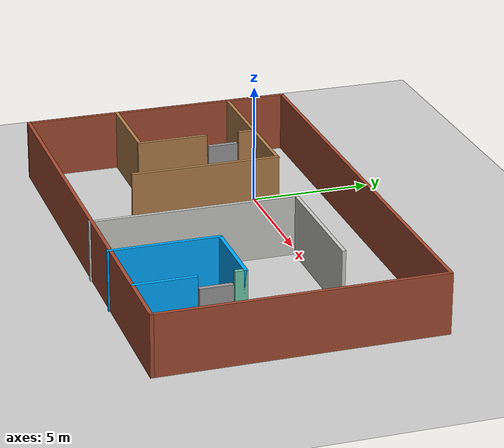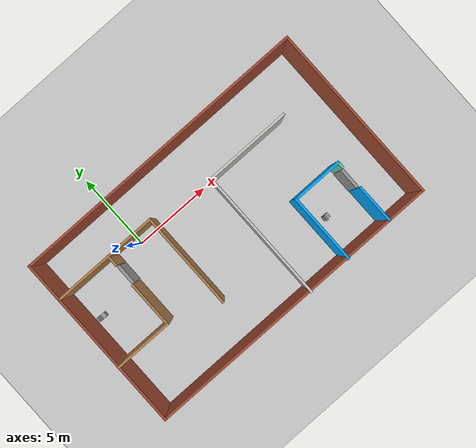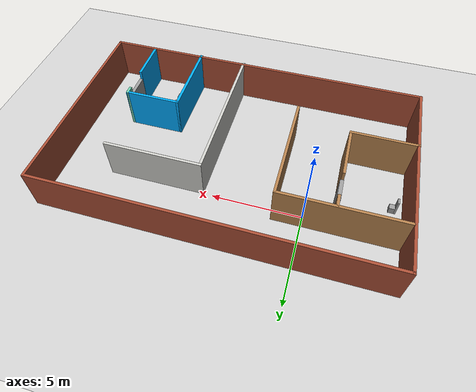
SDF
<sdf version="1.6">
 <world name="default">
  <plugin name="hello" filename="libhello.so"/>
  <light name="sun" type="directional">
   <pose>0 0 10 0 -0 0</pose>
   <diffuse>0.8 0.8 0.8 1</diffuse>
   <specular>0.1 0.1 0.1 1</specular>
   <attenuation>
    <range>1000</range>
    <constant>0.9</constant>
    <linear>0.01</linear>
    <quadratic>0.001</quadratic>
   </attenuation>
   <direction>-0.5 0.5 -1</direction>
  </light>
  <model name="ground_plane">
   <static>1</static>
   <link name="link">
    <collision name="collision">
     <geometry><plane><normal>0 0 1</normal><size>100 100</size></plane></geometry>
     <surface><friction><ode><mu>100</mu><mu2>50</mu2></ode></friction></surface>
    </collision>
    <visual name="visual">
     <cast_shadows>0</cast_shadows>
     <geometry><plane><normal>0 0 1</normal><size>100 100</size></plane></geometry>
     <material>
      <script><uri>file://media/materials/scripts/gazebo.material</uri><name>Gazebo/Grey</name></script>
     </material>
    </visual>
   </link>
  </model>
  <gravity>0 0 -9.8</gravity>
  <magnetic_field>6e-06 2.3e-05 -4.2e-05</magnetic_field>
  <atmosphere type="adiabatic"/>
  <physics name="default_physics" default="0" type="ode">
   <max_step_size>0.001</max_step_size>
   <real_time_factor>1</real_time_factor>
   <real_time_update_rate>1000</real_time_update_rate>
  </physics>
  <scene><ambient>0.4 0.4 0.4 1</ambient><background>0.7 0.7 0.7 1</background><shadows>1</shadows></scene>
  <spherical_coordinates>
   <surface_model>EARTH_WGS84</surface_model>
   <latitude_deg>0</latitude_deg>
   <longitude_deg>0</longitude_deg>
   <elevation>0</elevation>
   <heading_deg>0</heading_deg>
  </spherical_coordinates>
  <model name="myhome">
   <pose>4.38638 -2.72741 0 0 -0 0</pose>
   <link name="Door_0">
    <collision name="Door_0_Collision">
     <geometry><box><size>1.27817 0.2 2</size></box></geometry>
     <pose>0 0 1 0 -0 0</pose>
    </collision>
    <visual name="Door_0_Visual">
     <pose>0 0 1 0 -0 0</pose>
     <geometry><box><size>1.27817 0.2 2</size></box></geometry>
     <material>
      <script><uri>file://media/materials/scripts/gazebo.material</uri><name>Gazebo/Grey</name></script>
     </material>
    </visual>
    <pose>-5.94324 1.84811 0 0 0 -1.57152</pose>
   </link>
   <link name="Door_1">
    <collision name="Door_1_Collision">
     <geometry><box><size>1.3153 0.2 2</size></box></geometry>
     <pose>0 0 1 0 -0 0</pose>
    </collision>
    <visual name="Door_1_Visual">
     <pose>0 0 1 0 -0 0</pose>
     <geometry><box><size>1.3153 0.2 2</size></box></geometry>
     <material>
      <script><uri>file://media/materials/scripts/gazebo.material</uri><name>Gazebo/Grey</name></script>
     </material>
    </visual>
    <pose>7.08122 -2.48842 0 0 0 -1.57552</pose>
   </link>
   <link name="Wall_10">
    <collision name="Wall_10_Collision">
     <geometry><box><size>6.75 0.15 2.5</size></box></geometry>
     <pose>0 0 1.25 0 -0 0</pose>
    </collision>
    <visual name="Wall_10_Visual">
     <pose>0 0 1.25 0 -0 0</pose>
     <geometry><box><size>6.75 0.15 2.5</size></box></geometry>
     <material>
      <script><uri>file://media/materials/scripts/gazebo.material</uri><name>Gazebo/Wood</name></script>
      <ambient>0.996078 0.47451 0.0196078 1</ambient>
     </material>
    </visual>
    <pose>-6.1354 3.21487 0 0 -0 0</pose>
   </link>
   <link name="Wall_11">
    <collision name="Wall_11_Collision">
     <geometry><box><size>6.25 0.15 2.5</size></box></geometry>
     <pose>0 0 1.25 0 -0 0</pose>
    </collision>
    <visual name="Wall_11_Visual">
     <pose>0 0 1.25 0 -0 0</pose>
     <geometry><box><size>6.25 0.15 2.5</size></box></geometry>
     <material>
      <script><uri>file://media/materials/scripts/gazebo.material</uri><name>Gazebo/Wood</name></script>
      <ambient>0.996078 0.47451 0.0196078 1</ambient>
     </material>
    </visual>
    <pose>-2.8354 0.164866 0 0 0 -1.5708</pose>
   </link>
   <link name="Wall_13">
    <collision name="Wall_13_Collision">
     <geometry><box><size>8.5 0.15 2.5</size></box></geometry>
     <pose>0 0 1.25 0 -0 0</pose>
    </collision>
    <visual name="Wall_13_Visual">
     <pose>0 0 1.25 0 -0 0</pose>
     <geometry><box><size>8.5 0.15 2.5</size></box></geometry>
     <material>
      <script><uri>file://media/materials/scripts/gazebo.material</uri><name>Gazebo/CeilingTiled</name></script>
      <ambient>0.435294 0.796078 0.67451 1</ambient>
     </material>
    </visual>
    <pose>1.2112 -1.5324 0 0 -0 1.5708</pose>
   </link>
   <link name="Wall_14">
    <collision name="Wall_14_Collision">
     <geometry><box><size>5.5 0.15 2.5</size></box></geometry>
     <pose>0 0 1.25 0 -0 0</pose>
    </collision>
    <visual name="Wall_14_Visual">
     <pose>0 0 1.25 0 -0 0</pose>
     <geometry><box><size>5.5 0.15 2.5</size></box></geometry>
     <material>
      <script><uri>file://media/materials/scripts/gazebo.material</uri><name>Gazebo/CeilingTiled</name></script>
      <ambient>0.435294 0.796078 0.67451 1</ambient>
     </material>
    </visual>
    <pose>3.8862 2.6426 0 0 -0 0</pose>
   </link>
   <link name="Wall_16">
    <collision name="Wall_16_Collision">
     <geometry><box><size>4.5 0.15 2.5</size></box></geometry>
     <pose>0 0 1.25 0 -0 0</pose>
    </collision>
    <visual name="Wall_16_Visual">
     <pose>0 0 1.25 0 -0 0</pose>
     <geometry><box><size>4.5 0.15 2.5</size></box></geometry>
     <material>
      <script><uri>file://media/materials/scripts/gazebo.material</uri><name>Gazebo/Grey</name></script>
      <ambient>0 0.666667 1 1</ambient>
     </material>
    </visual>
    <pose>3.97995 -3.5324 0 0 -0 1.5708</pose>
   </link>
   <link name="Wall_17">
    <collision name="Wall_17_Collision">
     <geometry><box><size>3.25 0.15 2.5</size></box></geometry>
     <pose>0 0 1.25 0 -0 0</pose>
    </collision>
    <visual name="Wall_17_Visual">
     <pose>0 0 1.25 0 -0 0</pose>
     <geometry><box><size>3.25 0.15 2.5</size></box></geometry>
     <material>
      <script><uri>file://media/materials/scripts/gazebo.material</uri><name>Gazebo/Grey</name></script>
      <ambient>0 0.666667 1 1</ambient>
     </material>
    </visual>
    <pose>5.52996 -1.3574 0 0 -0 0</pose>
   </link>
   <link name="Wall_19">
    <collision name="Wall_19_Collision">
     <geometry><box><size>3.75 0.15 2.5</size></box></geometry>
     <pose>0 0 1.25 0 -0 0</pose>
    </collision>
    <visual name="Wall_19_Visual">
     <pose>0 0 1.25 0 -0 0</pose>
     <geometry><box><size>3.75 0.15 2.5</size></box></geometry>
     <material>
      <script><uri>file://media/materials/scripts/gazebo.material</uri><name>Gazebo/Wood</name></script>
      <ambient>1 1 1 1</ambient>
     </material>
    </visual>
    <pose>-7.75618 -1.76961 0 0 -0 0</pose>
   </link>
   <link name="Wall_20">
    <collision name="Wall_20_Collision">
     <geometry><box><size>3 0.15 2.5</size></box></geometry>
     <pose>0 0 1.25 0 -0 0</pose>
    </collision>
    <visual name="Wall_20_Visual">
     <pose>0 0 1.25 0 -0 0</pose>
     <geometry><box><size>3 0.15 2.5</size></box></geometry>
     <material>
      <script><uri>file://media/materials/scripts/gazebo.material</uri><name>Gazebo/Wood</name></script>
      <ambient>1 1 1 1</ambient>
     </material>
    </visual>
    <pose>-5.95618 -0.344612 0 0 -0 1.5708</pose>
   </link>
   <link name="Wall_22">
    <collision name="Wall_22_Collision">
     <geometry><box><size>0.75 0.15 2.5</size></box></geometry>
     <pose>0 0 1.25 0 -0 0</pose>
    </collision>
    <visual name="Wall_22_Visual">
     <pose>0 0 1.25 0 -0 0</pose>
     <geometry><box><size>0.75 0.15 2.5</size></box></geometry>
     <material>
      <script><uri>file://media/materials/scripts/gazebo.material</uri><name>Gazebo/Wood</name></script>
      <ambient>1 1 1 1</ambient>
     </material>
    </visual>
    <pose>-5.90629 2.89225 0 0 0 -1.5708</pose>
   </link>
   <link name="Wall_24">
    <collision name="Wall_24_Collision">
     <geometry><box><size>0.5 0.15 2.5</size></box></geometry>
     <pose>0 0 1.25 0 -0 0</pose>
    </collision>
    <visual name="Wall_24_Visual">
     <pose>0 0 1.25 0 -0 0</pose>
     <geometry><box><size>0.5 0.15 2.5</size></box></geometry>
     <material>
      <script><uri>file://media/materials/scripts/gazebo.material</uri><name>Gazebo/Grey</name></script>
      <ambient>0.435294 0.796078 0.67451 1</ambient>
     </material>
    </visual>
    <pose>7.07996 -1.5324 0 0 0 -1.5708</pose>
   </link>
   <link name="Wall_26">
    <collision name="Wall_26_Collision">
     <geometry><box><size>2.5 0.15 2.5</size></box></geometry>
     <pose>0 0 1.25 0 -0 0</pose>
    </collision>
    <visual name="Wall_26_Visual">
     <pose>0 0 1.25 0 -0 0</pose>
     <geometry><box><size>2.5 0.15 2.5</size></box></geometry>
     <material>
      <script><uri>file://media/materials/scripts/gazebo.material</uri><name>Gazebo/Grey</name></script>
      <ambient>0 0.666667 1 1</ambient>
     </material>
    </visual>
    <pose>7.07861 -4.44031 0 0 0 -1.5708</pose>
   </link>
   <link name="Wall_3">
    <collision name="Wall_3_Collision">
     <geometry><box><size>11.5 0.15 2.5</size></box></geometry>
     <pose>0 0 1.25 0 -0 0</pose>
    </collision>
    <visual name="Wall_3_Visual">
     <pose>0 0 1.25 0 -0 0</pose>
     <geometry><box><size>11.5 0.15 2.5</size></box></geometry>
     <material>
      <script><uri>file://media/materials/scripts/gazebo.material</uri><name>Gazebo/Bricks</name></script>
      <ambient>1 1 1 1</ambient>
     </material>
    </visual>
    <pose>-9.54382 0.032397 0 0 -0 1.5708</pose>
   </link>
   <link name="Wall_6">
    <collision name="Wall_6_Collision">
     <geometry><box><size>19.25 0.15 2.5</size></box></geometry>
     <pose>0 0 1.25 0 -0 0</pose>
    </collision>
    <visual name="Wall_6_Visual">
     <pose>0 0 1.25 0 -0 0</pose>
     <geometry><box><size>19.25 0.15 2.5</size></box></geometry>
     <material>
      <script><uri>file://media/materials/scripts/gazebo.material</uri><name>Gazebo/Bricks</name></script>
      <ambient>1 1 1 1</ambient>
     </material>
    </visual>
    <pose>0.006176 5.7074 0 0 -0 0</pose>
   </link>
   <link name="Wall_7">
    <collision name="Wall_7_Collision">
     <geometry><box><size>11.5 0.15 2.5</size></box></geometry>
     <pose>0 0 1.25 0 -0 0</pose>
    </collision>
    <visual name="Wall_7_Visual">
     <pose>0 0 1.25 0 -0 0</pose>
     <geometry><box><size>11.5 0.15 2.5</size></box></geometry>
     <material>
      <script><uri>file://media/materials/scripts/gazebo.material</uri><name>Gazebo/Bricks</name></script>
      <ambient>1 1 1 1</ambient>
     </material>
    </visual>
    <pose>9.55618 0.032397 0 0 0 -1.5708</pose>
   </link>
   <link name="Wall_8">
    <collision name="Wall_8_Collision">
     <geometry><box><size>19.25 0.15 2.5</size></box></geometry>
     <pose>0 0 1.25 0 -0 0</pose>
    </collision>
    <visual name="Wall_8_Visual">
     <pose>0 0 1.25 0 -0 0</pose>
     <geometry><box><size>19.25 0.15 2.5</size></box></geometry>
     <material>
      <script><uri>file://media/materials/scripts/gazebo.material</uri><name>Gazebo/Bricks</name></script>
      <ambient>1 1 1 1</ambient>
     </material>
    </visual>
    <pose>0.006176 -5.6426 0 0 -0 3.14159</pose>
   </link>
   <static>1</static>
  </model>
  <model name="chair">
   <link name="link_0">
    <pose>0.1 2e-06 -0.15 0 -0 0</pose>
    <inertial>
     <mass>1</mass>
     <inertia>
      <ixx>0.166667</ixx>
      <ixy>0</ixy>
      <ixz>0</ixz>
      <iyy>0.166667</iyy>
      <iyz>0</iyz>
      <izz>0.166667</izz>
     </inertia>
     <pose>0 0 -0.3 0 -0 0</pose>
    </inertial>
    <visual name="visual">
     <geometry><box><size>0.3 0.3 0.4</size></box></geometry>
     <material>
      <lighting>1</lighting>
      <script><uri>file://media/materials/scripts/gazebo.material</uri><name>Gazebo/Grey</name></script>
      <ambient>0.3 0.3 0.3 1</ambient>
      <diffuse>0.7 0.7 0.7 1</diffuse>
      <specular>0.01 0.01 0.01 1</specular>
      <emissive>0 0 0 1</emissive>
      <shader type="vertex"><normal_map>__default__</normal_map></shader>
     </material>
    </visual>
    <collision name="collision">
     <geometry><box><size>0.3 0.3 0.4</size></box></geometry>
     <surface>
      <friction>
       <ode><mu>1</mu><mu2>1</mu2><fdir1>0 0 0</fdir1><slip1>0</slip1><slip2>0</slip2></ode>
       <torsional>
        <coefficient>1</coefficient>
        <patch_radius>0</patch_radius>
        <surface_radius>0</surface_radius>
        <use_patch_radius>1</use_patch_radius>
        <ode><slip>0</slip></ode>
       </torsional>
      </friction>
      <bounce><restitution_coefficient>0</restitution_coefficient><threshold>1e+06</threshold></bounce>
      <contact>
       <collide_without_contact>0</collide_without_contact>
       <collide_without_contact_bitmask>1</collide_without_contact_bitmask>
       <collide_bitmask>1</collide_bitmask>
       <ode>
        <soft_cfm>0</soft_cfm>
        <soft_erp>0.2</soft_erp>
        <kp>1e+13</kp>
        <kd>1</kd>
        <max_vel>0.01</max_vel>
        <min_depth>0</min_depth>
       </ode>
       <bullet>
        <split_impulse>1</split_impulse>
        <split_impulse_penetration_threshold>-0.01</split_impulse_penetration_threshold>
        <soft_cfm>0</soft_cfm>
        <soft_erp>0.2</soft_erp>
        <kp>1e+13</kp>
        <kd>1</kd>
       </bullet>
      </contact>
     </surface>
    </collision>
   </link>
   <link name="link_1">
    <pose>-0.1 2e-06 0.15 0 -0 0</pose>
    <inertial>
     <mass>0.763972</mass>
     <inertia>
      <ixx>0.100822</ixx>
      <ixy>0</ixy>
      <ixz>0</ixz>
      <iyy>0.127329</iyy>
      <iyz>0</iyz>
      <izz>0.100822</izz>
     </inertia>
    </inertial>
    <visual name="visual">
     <geometry><box><size>0.1 0.305589 1</size></box></geometry>
     <material>
      <lighting>1</lighting>
      <script><uri>file://media/materials/scripts/gazebo.material</uri><name>Gazebo/Grey</name></script>
      <ambient>0.3 0.3 0.3 1</ambient>
      <diffuse>0.7 0.7 0.7 1</diffuse>
      <specular>0.01 0.01 0.01 1</specular>
      <emissive>0 0 0 1</emissive>
      <shader type="vertex"><normal_map>__default__</normal_map></shader>
     </material>
    </visual>
    <collision name="collision">
     <geometry><box><size>0.1 0.305589 1</size></box></geometry>
     <surface>
      <friction>
       <ode><mu>1</mu><mu2>1</mu2><fdir1>0 0 0</fdir1><slip1>0</slip1><slip2>0</slip2></ode>
       <torsional>
        <coefficient>1</coefficient>
        <patch_radius>0</patch_radius>
        <surface_radius>0</surface_radius>
        <use_patch_radius>1</use_patch_radius>
        <ode><slip>0</slip></ode>
       </torsional>
      </friction>
      <bounce><restitution_coefficient>0</restitution_coefficient><threshold>1e+06</threshold></bounce>
      <contact>
       <collide_without_contact>0</collide_without_contact>
       <collide_without_contact_bitmask>1</collide_without_contact_bitmask>
       <collide_bitmask>1</collide_bitmask>
       <ode>
        <soft_cfm>0</soft_cfm>
        <soft_erp>0.2</soft_erp>
        <kp>1e+13</kp>
        <kd>1</kd>
        <max_vel>0.01</max_vel>
        <min_depth>0</min_depth>
       </ode>
       <bullet>
        <split_impulse>1</split_impulse>
        <split_impulse_penetration_threshold>-0.01</split_impulse_penetration_threshold>
        <soft_cfm>0</soft_cfm>
        <soft_erp>0.2</soft_erp>
        <kp>1e+13</kp>
        <kd>1</kd>
       </bullet>
      </contact>
     </surface>
    </collision>
   </link>
   <joint name="link_1_JOINT_1" type="fixed">
    <parent>link_1</parent>
    <child>link_0</child>
    <physics>
     <ode><limit><cfm>0</cfm><erp>0.2</erp></limit><suspension><cfm>0</cfm><erp>0.2</erp></suspension></ode>
    </physics>
   </joint>
   <static>0</static>
   <pose>9.25154 -6.12315 0.35 0 -0 8e-06</pose>
  </model>
  <model name="chair_0">
   <link name="link_0">
    <pose>0.1 2e-06 -0.15 0 -0 0</pose>
    <inertial>
     <mass>1</mass>
     <inertia>
      <ixx>0.166667</ixx>
      <ixy>0</ixy>
      <ixz>0</ixz>
      <iyy>0.166667</iyy>
      <iyz>0</iyz>
      <izz>0.166667</izz>
     </inertia>
     <pose>0 0 -0.3 0 -0 0</pose>
    </inertial>
    <visual name="visual">
     <geometry><box><size>0.3 0.3 0.4</size></box></geometry>
     <material>
      <lighting>1</lighting>
      <script><uri>file://media/materials/scripts/gazebo.material</uri><name>Gazebo/Grey</name></script>
      <ambient>0.3 0.3 0.3 1</ambient>
      <diffuse>0.7 0.7 0.7 1</diffuse>
      <specular>0.01 0.01 0.01 1</specular>
      <emissive>0 0 0 1</emissive>
      <shader type="vertex"><normal_map>__default__</normal_map></shader>
     </material>
    </visual>
    <collision name="collision">
     <geometry><box><size>0.3 0.3 0.4</size></box></geometry>
     <surface>
      <friction>
       <ode><mu>1</mu><mu2>1</mu2><fdir1>0 0 0</fdir1><slip1>0</slip1><slip2>0</slip2></ode>
       <torsional>
        <coefficient>1</coefficient>
        <patch_radius>0</patch_radius>
        <surface_radius>0</surface_radius>
        <use_patch_radius>1</use_patch_radius>
        <ode><slip>0</slip></ode>
       </torsional>
      </friction>
      <bounce><restitution_coefficient>0</restitution_coefficient><threshold>1e+06</threshold></bounce>
      <contact>
       <collide_without_contact>0</collide_without_contact>
       <collide_without_contact_bitmask>1</collide_without_contact_bitmask>
       <collide_bitmask>1</collide_bitmask>
       <ode>
        <soft_cfm>0</soft_cfm>
        <soft_erp>0.2</soft_erp>
        <kp>1e+13</kp>
        <kd>1</kd>
        <max_vel>0.01</max_vel>
        <min_depth>0</min_depth>
       </ode>
       <bullet>
        <split_impulse>1</split_impulse>
        <split_impulse_penetration_threshold>-0.01</split_impulse_penetration_threshold>
        <soft_cfm>0</soft_cfm>
        <soft_erp>0.2</soft_erp>
        <kp>1e+13</kp>
        <kd>1</kd>
       </bullet>
      </contact>
     </surface>
    </collision>
   </link>
   <link name="link_1">
    <pose>-0.1 2e-06 0.15 0 -0 0</pose>
    <inertial>
     <mass>0.763972</mass>
     <inertia>
      <ixx>0.100822</ixx>
      <ixy>0</ixy>
      <ixz>0</ixz>
      <iyy>0.127329</iyy>
      <iyz>0</iyz>
      <izz>0.100822</izz>
     </inertia>
    </inertial>
    <visual name="visual">
     <geometry><box><size>0.1 0.305589 1</size></box></geometry>
     <material>
      <lighting>1</lighting>
      <script><uri>file://media/materials/scripts/gazebo.material</uri><name>Gazebo/Grey</name></script>
      <ambient>0.3 0.3 0.3 1</ambient>
      <diffuse>0.7 0.7 0.7 1</diffuse>
      <specular>0.01 0.01 0.01 1</specular>
      <emissive>0 0 0 1</emissive>
      <shader type="vertex"><normal_map>__default__</normal_map></shader>
     </material>
    </visual>
    <collision name="collision">
     <geometry><box><size>0.1 0.305589 1</size></box></geometry>
     <surface>
      <friction>
       <ode><mu>1</mu><mu2>1</mu2><fdir1>0 0 0</fdir1><slip1>0</slip1><slip2>0</slip2></ode>
       <torsional>
        <coefficient>1</coefficient>
        <patch_radius>0</patch_radius>
        <surface_radius>0</surface_radius>
        <use_patch_radius>1</use_patch_radius>
        <ode><slip>0</slip></ode>
       </torsional>
      </friction>
      <bounce><restitution_coefficient>0</restitution_coefficient><threshold>1e+06</threshold></bounce>
      <contact>
       <collide_without_contact>0</collide_without_contact>
       <collide_without_contact_bitmask>1</collide_without_contact_bitmask>
       <collide_bitmask>1</collide_bitmask>
       <ode>
        <soft_cfm>0</soft_cfm>
        <soft_erp>0.2</soft_erp>
        <kp>1e+13</kp>
        <kd>1</kd>
        <max_vel>0.01</max_vel>
        <min_depth>0</min_depth>
       </ode>
       <bullet>
        <split_impulse>1</split_impulse>
        <split_impulse_penetration_threshold>-0.01</split_impulse_penetration_threshold>
        <soft_cfm>0</soft_cfm>
        <soft_erp>0.2</soft_erp>
        <kp>1e+13</kp>
        <kd>1</kd>
       </bullet>
      </contact>
     </surface>
    </collision>
   </link>
   <joint name="link_1_JOINT_1" type="fixed">
    <parent>link_1</parent>
    <child>link_0</child>
    <physics>
     <ode><limit><cfm>0</cfm><erp>0.2</erp></limit><suspension><cfm>0</cfm><erp>0.2</erp></suspension></ode>
    </physics>
   </joint>
   <static>0</static>
   <pose>-4.57497 -1.73779 0.35 0 -0 7e-06</pose>
  </model>
 </world>
</sdf>
